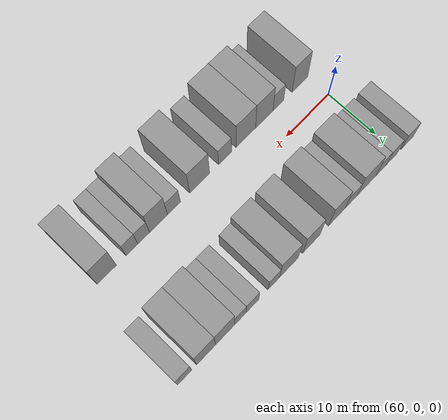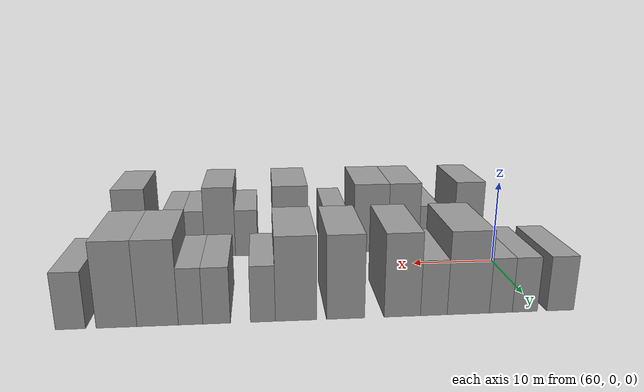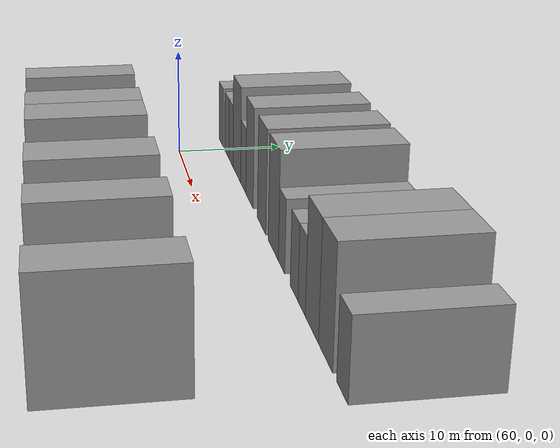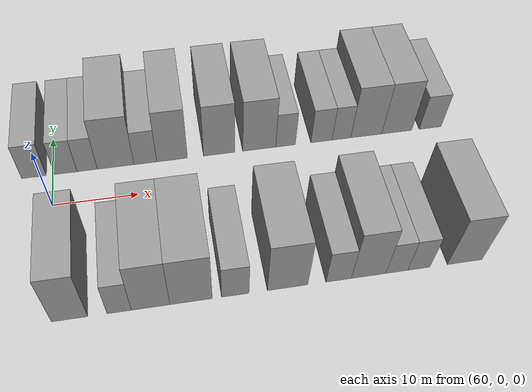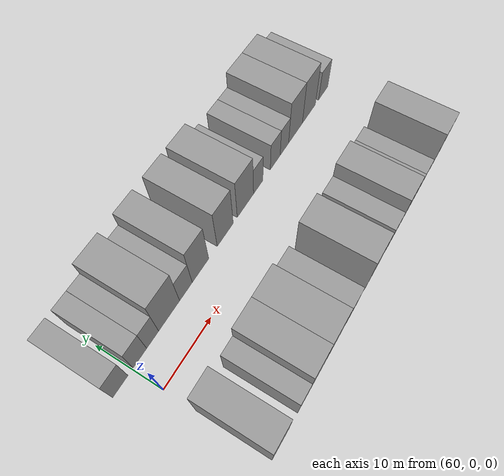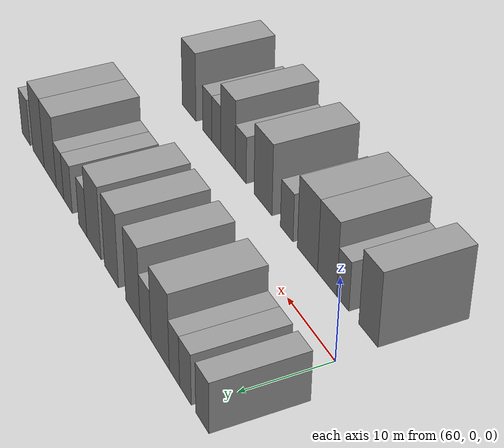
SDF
<sdf version="1.6">
 <world name="default">
  <model name="building_12">
   <static>1</static>
   <pose>57.7570 9.5000 0 0.000000 0.000000 1.570796</pose>
   <link name="link">
    <pose>0 0 3.00 0 0 0</pose>
    <collision name="collision"><geometry><box><size>10.0000 2.9081 6.0000</size></box></geometry></collision>
    <visual name="visual">
     <cast_shadows>0</cast_shadows>
     <geometry><box><size>10.0000 2.9081 6.0000</size></box></geometry>
     <material>
      <script>
       <uri>model://grey_wall/materials/scripts</uri>
       <uri>model://grey_wall/materials/textures</uri>
       <name>vrc/grey_wall</name>
      </script>
     </material>
    </visual>
   </link>
  </model>
  <model name="building_13">
   <static>1</static>
   <pose>61.5493 9.5000 0 0.000000 0.000000 1.570796</pose>
   <link name="link">
    <pose>0 0 3.00 0 0 0</pose>
    <collision name="collision"><geometry><box><size>10.0000 2.6766 6.0000</size></box></geometry></collision>
    <visual name="visual">
     <cast_shadows>0</cast_shadows>
     <geometry><box><size>10.0000 2.6766 6.0000</size></box></geometry>
     <material>
      <script>
       <uri>model://grey_wall/materials/scripts</uri>
       <uri>model://grey_wall/materials/textures</uri>
       <name>vrc/grey_wall</name>
      </script>
     </material>
    </visual>
   </link>
  </model>
  <model name="building_14">
   <static>1</static>
   <pose>64.1087 9.5000 0 0.000000 0.000000 1.570796</pose>
   <link name="link">
    <pose>0 0 3.00 0 0 0</pose>
    <collision name="collision"><geometry><box><size>10.0000 2.4421 6.0000</size></box></geometry></collision>
    <visual name="visual">
     <cast_shadows>0</cast_shadows>
     <geometry><box><size>10.0000 2.4421 6.0000</size></box></geometry>
     <material>
      <script>
       <uri>model://grey_wall/materials/scripts</uri>
       <uri>model://grey_wall/materials/textures</uri>
       <name>vrc/grey_wall</name>
      </script>
     </material>
    </visual>
   </link>
  </model>
  <model name="building_15">
   <static>1</static>
   <pose>67.5504 9.5000 0 0.000000 0.000000 1.570796</pose>
   <link name="link">
    <pose>0 0 4.50 0 0 0</pose>
    <collision name="collision"><geometry><box><size>10.0000 4.4414 9.0000</size></box></geometry></collision>
    <visual name="visual">
     <cast_shadows>0</cast_shadows>
     <geometry><box><size>10.0000 4.4414 9.0000</size></box></geometry>
     <material>
      <script>
       <uri>model://grey_wall/materials/scripts</uri>
       <uri>model://grey_wall/materials/textures</uri>
       <name>vrc/grey_wall</name>
      </script>
     </material>
    </visual>
   </link>
  </model>
  <model name="building_16">
   <static>1</static>
   <pose>71.1654 9.5000 0 0.000000 0.000000 1.570796</pose>
   <link name="link">
    <pose>0 0 3.00 0 0 0</pose>
    <collision name="collision"><geometry><box><size>10.0000 2.7886 6.0000</size></box></geometry></collision>
    <visual name="visual">
     <cast_shadows>0</cast_shadows>
     <geometry><box><size>10.0000 2.7886 6.0000</size></box></geometry>
     <material>
      <script>
       <uri>model://grey_wall/materials/scripts</uri>
       <uri>model://grey_wall/materials/textures</uri>
       <name>vrc/grey_wall</name>
      </script>
     </material>
    </visual>
   </link>
  </model>
  <model name="building_17">
   <static>1</static>
   <pose>74.4422 9.5000 0 0.000000 0.000000 1.570796</pose>
   <link name="link">
    <pose>0 0 4.50 0 0 0</pose>
    <collision name="collision"><geometry><box><size>10.0000 3.7651 9.0000</size></box></geometry></collision>
    <visual name="visual">
     <cast_shadows>0</cast_shadows>
     <geometry><box><size>10.0000 3.7651 9.0000</size></box></geometry>
     <material>
      <script>
       <uri>model://grey_wall/materials/scripts</uri>
       <uri>model://grey_wall/materials/textures</uri>
       <name>vrc/grey_wall</name>
      </script>
     </material>
    </visual>
   </link>
  </model>
  <model name="building_18">
   <static>1</static>
   <pose>80.2710 9.5000 0 0.000000 0.000000 1.570796</pose>
   <link name="link">
    <pose>0 0 4.50 0 0 0</pose>
    <collision name="collision"><geometry><box><size>10.0000 3.8924 9.0000</size></box></geometry></collision>
    <visual name="visual">
     <cast_shadows>0</cast_shadows>
     <geometry><box><size>10.0000 3.8924 9.0000</size></box></geometry>
     <material>
      <script>
       <uri>model://grey_wall/materials/scripts</uri>
       <uri>model://grey_wall/materials/textures</uri>
       <name>vrc/grey_wall</name>
      </script>
     </material>
    </visual>
   </link>
  </model>
  <model name="building_19">
   <static>1</static>
   <pose>85.3004 9.5000 0 0.000000 0.000000 1.570796</pose>
   <link name="link">
    <pose>0 0 4.50 0 0 0</pose>
    <collision name="collision"><geometry><box><size>10.0000 4.1664 9.0000</size></box></geometry></collision>
    <visual name="visual">
     <cast_shadows>0</cast_shadows>
     <geometry><box><size>10.0000 4.1664 9.0000</size></box></geometry>
     <material>
      <script>
       <uri>model://grey_wall/materials/scripts</uri>
       <uri>model://grey_wall/materials/textures</uri>
       <name>vrc/grey_wall</name>
      </script>
     </material>
    </visual>
   </link>
  </model>
  <model name="building_20">
   <static>1</static>
   <pose>88.6267 9.5000 0 0.000000 0.000000 1.570796</pose>
   <link name="link">
    <pose>0 0 3.00 0 0 0</pose>
    <collision name="collision"><geometry><box><size>10.0000 2.4862 6.0000</size></box></geometry></collision>
    <visual name="visual">
     <cast_shadows>0</cast_shadows>
     <geometry><box><size>10.0000 2.4862 6.0000</size></box></geometry>
     <material>
      <script>
       <uri>model://grey_wall/materials/scripts</uri>
       <uri>model://grey_wall/materials/textures</uri>
       <name>vrc/grey_wall</name>
      </script>
     </material>
    </visual>
   </link>
  </model>
  <model name="building_21">
   <static>1</static>
   <pose>93.2299 9.5000 0 0.000000 0.000000 1.570796</pose>
   <link name="link">
    <pose>0 0 3.00 0 0 0</pose>
    <collision name="collision"><geometry><box><size>10.0000 2.7202 6.0000</size></box></geometry></collision>
    <visual name="visual">
     <cast_shadows>0</cast_shadows>
     <geometry><box><size>10.0000 2.7202 6.0000</size></box></geometry>
     <material>
      <script>
       <uri>model://grey_wall/materials/scripts</uri>
       <uri>model://grey_wall/materials/textures</uri>
       <name>vrc/grey_wall</name>
      </script>
     </material>
    </visual>
   </link>
  </model>
  <model name="building_22">
   <static>1</static>
   <pose>95.7969 9.5000 0 0.000000 0.000000 1.570796</pose>
   <link name="link">
    <pose>0 0 3.00 0 0 0</pose>
    <collision name="collision"><geometry><box><size>10.0000 2.4138 6.0000</size></box></geometry></collision>
    <visual name="visual">
     <cast_shadows>0</cast_shadows>
     <geometry><box><size>10.0000 2.4138 6.0000</size></box></geometry>
     <material>
      <script>
       <uri>model://grey_wall/materials/scripts</uri>
       <uri>model://grey_wall/materials/textures</uri>
       <name>vrc/grey_wall</name>
      </script>
     </material>
    </visual>
   </link>
  </model>
  <model name="building_23">
   <static>1</static>
   <pose>99.0238 9.5000 0 0.000000 0.000000 1.570796</pose>
   <link name="link">
    <pose>0 0 4.50 0 0 0</pose>
    <collision name="collision"><geometry><box><size>10.0000 4.0401 9.0000</size></box></geometry></collision>
    <visual name="visual">
     <cast_shadows>0</cast_shadows>
     <geometry><box><size>10.0000 4.0401 9.0000</size></box></geometry>
     <material>
      <script>
       <uri>model://grey_wall/materials/scripts</uri>
       <uri>model://grey_wall/materials/textures</uri>
       <name>vrc/grey_wall</name>
      </script>
     </material>
    </visual>
   </link>
  </model>
  <model name="building_24">
   <static>1</static>
   <pose>103.0161 9.5000 0 0.000000 0.000000 1.570796</pose>
   <link name="link">
    <pose>0 0 4.50 0 0 0</pose>
    <collision name="collision"><geometry><box><size>10.0000 3.9446 9.0000</size></box></geometry></collision>
    <visual name="visual">
     <cast_shadows>0</cast_shadows>
     <geometry><box><size>10.0000 3.9446 9.0000</size></box></geometry>
     <material>
      <script>
       <uri>model://grey_wall/materials/scripts</uri>
       <uri>model://grey_wall/materials/textures</uri>
       <name>vrc/grey_wall</name>
      </script>
     </material>
    </visual>
   </link>
  </model>
  <model name="building_25">
   <static>1</static>
   <pose>107.4383 9.5000 0 0.000000 0.000000 1.570796</pose>
   <link name="link">
    <pose>0 0 3.00 0 0 0</pose>
    <collision name="collision"><geometry><box><size>10.0000 2.8997 6.0000</size></box></geometry></collision>
    <visual name="visual">
     <cast_shadows>0</cast_shadows>
     <geometry><box><size>10.0000 2.8997 6.0000</size></box></geometry>
     <material>
      <script>
       <uri>model://grey_wall/materials/scripts</uri>
       <uri>model://grey_wall/materials/textures</uri>
       <name>vrc/grey_wall</name>
      </script>
     </material>
    </visual>
   </link>
  </model>
  <model name="building_62">
   <static>1</static>
   <pose>61.9089 -9.5000 0 0.000000 0.000000 1.570796</pose>
   <link name="link">
    <pose>0 0 4.50 0 0 0</pose>
    <collision name="collision"><geometry><box><size>10.0000 3.7264 9.0000</size></box></geometry></collision>
    <visual name="visual">
     <cast_shadows>0</cast_shadows>
     <geometry><box><size>10.0000 3.7264 9.0000</size></box></geometry>
     <material>
      <script>
       <uri>model://grey_wall/materials/scripts</uri>
       <uri>model://grey_wall/materials/textures</uri>
       <name>vrc/grey_wall</name>
      </script>
     </material>
    </visual>
   </link>
  </model>
  <model name="building_63">
   <static>1</static>
   <pose>67.0317 -9.5000 0 0.000000 0.000000 1.570796</pose>
   <link name="link">
    <pose>0 0 3.00 0 0 0</pose>
    <collision name="collision"><geometry><box><size>10.0000 2.5192 6.0000</size></box></geometry></collision>
    <visual name="visual">
     <cast_shadows>0</cast_shadows>
     <geometry><box><size>10.0000 2.5192 6.0000</size></box></geometry>
     <material>
      <script>
       <uri>model://grey_wall/materials/scripts</uri>
       <uri>model://grey_wall/materials/textures</uri>
       <name>vrc/grey_wall</name>
      </script>
     </material>
    </visual>
   </link>
  </model>
  <model name="building_64">
   <static>1</static>
   <pose>70.3164 -9.5000 0 0.000000 0.000000 1.570796</pose>
   <link name="link">
    <pose>0 0 4.50 0 0 0</pose>
    <collision name="collision"><geometry><box><size>10.0000 4.0502 9.0000</size></box></geometry></collision>
    <visual name="visual">
     <cast_shadows>0</cast_shadows>
     <geometry><box><size>10.0000 4.0502 9.0000</size></box></geometry>
     <material>
      <script>
       <uri>model://grey_wall/materials/scripts</uri>
       <uri>model://grey_wall/materials/textures</uri>
       <name>vrc/grey_wall</name>
      </script>
     </material>
    </visual>
   </link>
  </model>
  <model name="building_65">
   <static>1</static>
   <pose>74.5894 -9.5000 0 0.000000 0.000000 1.570796</pose>
   <link name="link">
    <pose>0 0 4.50 0 0 0</pose>
    <collision name="collision"><geometry><box><size>10.0000 4.4960 9.0000</size></box></geometry></collision>
    <visual name="visual">
     <cast_shadows>0</cast_shadows>
     <geometry><box><size>10.0000 4.4960 9.0000</size></box></geometry>
     <material>
      <script>
       <uri>model://grey_wall/materials/scripts</uri>
       <uri>model://grey_wall/materials/textures</uri>
       <name>vrc/grey_wall</name>
      </script>
     </material>
    </visual>
   </link>
  </model>
  <model name="building_66">
   <static>1</static>
   <pose>79.3045 -9.5000 0 0.000000 0.000000 1.570796</pose>
   <link name="link">
    <pose>0 0 3.00 0 0 0</pose>
    <collision name="collision"><geometry><box><size>10.0000 2.9342 6.0000</size></box></geometry></collision>
    <visual name="visual">
     <cast_shadows>0</cast_shadows>
     <geometry><box><size>10.0000 2.9342 6.0000</size></box></geometry>
     <material>
      <script>
       <uri>model://grey_wall/materials/scripts</uri>
       <uri>model://grey_wall/materials/textures</uri>
       <name>vrc/grey_wall</name>
      </script>
     </material>
    </visual>
   </link>
  </model>
  <model name="building_67">
   <static>1</static>
   <pose>84.9762 -9.5000 0 0.000000 0.000000 1.570796</pose>
   <link name="link">
    <pose>0 0 4.50 0 0 0</pose>
    <collision name="collision"><geometry><box><size>10.0000 4.4092 9.0000</size></box></geometry></collision>
    <visual name="visual">
     <cast_shadows>0</cast_shadows>
     <geometry><box><size>10.0000 4.4092 9.0000</size></box></geometry>
     <material>
      <script>
       <uri>model://grey_wall/materials/scripts</uri>
       <uri>model://grey_wall/materials/textures</uri>
       <name>vrc/grey_wall</name>
      </script>
     </material>
    </visual>
   </link>
  </model>
  <model name="building_68">
   <static>1</static>
   <pose>90.5872 -9.5000 0 0.000000 0.000000 1.570796</pose>
   <link name="link">
    <pose>0 0 3.00 0 0 0</pose>
    <collision name="collision"><geometry><box><size>10.0000 2.8128 6.0000</size></box></geometry></collision>
    <visual name="visual">
     <cast_shadows>0</cast_shadows>
     <geometry><box><size>10.0000 2.8128 6.0000</size></box></geometry>
     <material>
      <script>
       <uri>model://grey_wall/materials/scripts</uri>
       <uri>model://grey_wall/materials/textures</uri>
       <name>vrc/grey_wall</name>
      </script>
     </material>
    </visual>
   </link>
  </model>
  <model name="building_69">
   <static>1</static>
   <pose>93.9170 -9.5000 0 0.000000 0.000000 1.570796</pose>
   <link name="link">
    <pose>0 0 4.50 0 0 0</pose>
    <collision name="collision"><geometry><box><size>10.0000 3.8468 9.0000</size></box></geometry></collision>
    <visual name="visual">
     <cast_shadows>0</cast_shadows>
     <geometry><box><size>10.0000 3.8468 9.0000</size></box></geometry>
     <material>
      <script>
       <uri>model://grey_wall/materials/scripts</uri>
       <uri>model://grey_wall/materials/textures</uri>
       <name>vrc/grey_wall</name>
      </script>
     </material>
    </visual>
   </link>
  </model>
  <model name="building_70">
   <static>1</static>
   <pose>97.0831 -9.5000 0 0.000000 0.000000 1.570796</pose>
   <link name="link">
    <pose>0 0 3.00 0 0 0</pose>
    <collision name="collision"><geometry><box><size>10.0000 2.4854 6.0000</size></box></geometry></collision>
    <visual name="visual">
     <cast_shadows>0</cast_shadows>
     <geometry><box><size>10.0000 2.4854 6.0000</size></box></geometry>
     <material>
      <script>
       <uri>model://grey_wall/materials/scripts</uri>
       <uri>model://grey_wall/materials/textures</uri>
       <name>vrc/grey_wall</name>
      </script>
     </material>
    </visual>
   </link>
  </model>
  <model name="building_71">
   <static>1</static>
   <pose>99.5820 -9.5000 0 0.000000 0.000000 1.570796</pose>
   <link name="link">
    <pose>0 0 3.00 0 0 0</pose>
    <collision name="collision"><geometry><box><size>10.0000 2.5124 6.0000</size></box></geometry></collision>
    <visual name="visual">
     <cast_shadows>0</cast_shadows>
     <geometry><box><size>10.0000 2.5124 6.0000</size></box></geometry>
     <material>
      <script>
       <uri>model://grey_wall/materials/scripts</uri>
       <uri>model://grey_wall/materials/textures</uri>
       <name>vrc/grey_wall</name>
      </script>
     </material>
    </visual>
   </link>
  </model>
  <model name="building_72">
   <static>1</static>
   <pose>104.8292 -9.5000 0 0.000000 0.000000 1.570796</pose>
   <link name="link">
    <pose>0 0 4.50 0 0 0</pose>
    <collision name="collision"><geometry><box><size>10.0000 3.9821 9.0000</size></box></geometry></collision>
    <visual name="visual">
     <cast_shadows>0</cast_shadows>
     <geometry><box><size>10.0000 3.9821 9.0000</size></box></geometry>
     <material>
      <script>
       <uri>model://grey_wall/materials/scripts</uri>
       <uri>model://grey_wall/materials/textures</uri>
       <name>vrc/grey_wall</name>
      </script>
     </material>
    </visual>
   </link>
  </model>
 </world>
</sdf>
